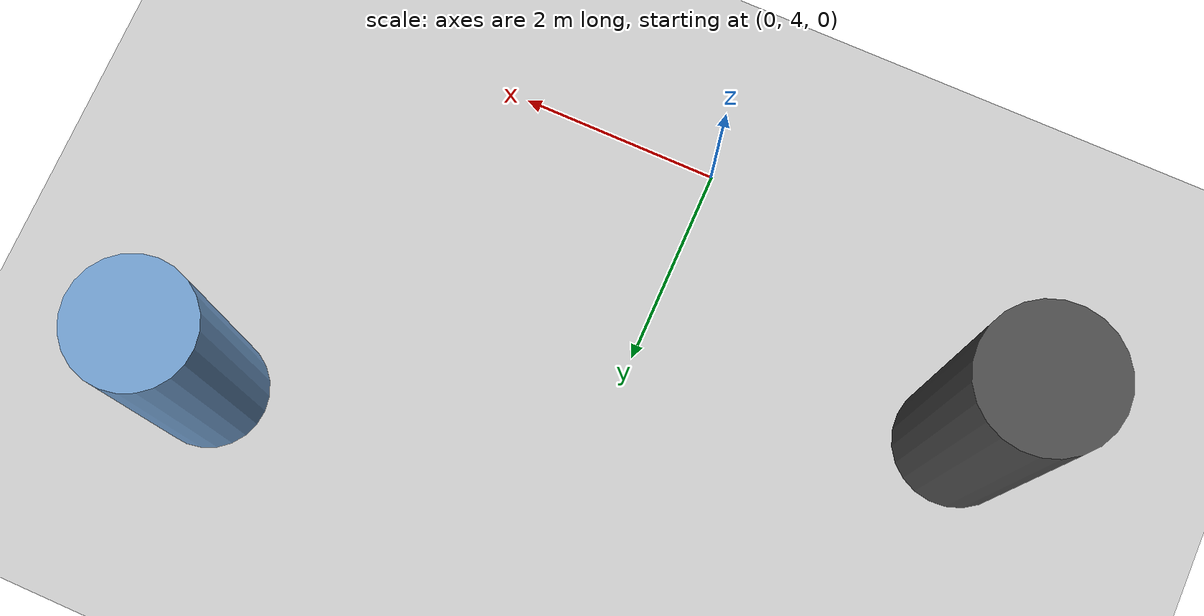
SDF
<?xml version='1.0'?>
<sdf version='1.6'>
  <world name='default'>
    <!-- Sun light -->
    <light name='sun' type='directional'>
      <cast_shadows>1</cast_shadows>
      <pose>0 0 10 0 0 0</pose>
      <diffuse>0.8 0.8 0.8 1</diffuse>
      <specular>0.2 0.2 0.2 1</specular>
      <attenuation>
        <range>1000</range>
        <constant>0.9</constant>
        <linear>0.01</linear>
        <quadratic>0.001</quadratic>
      </attenuation>
      <direction>-0.5 0.1 -0.9</direction>
    </light>

    <!-- Ground plane -->
    <model name='ground_plane'>
      <static>1</static>
      <link name='link'>
        <collision name='collision'>
          <geometry>
            <plane>
              <normal>0 0 1</normal>
              <size>100 100</size>
            </plane>
          </geometry>
          <surface>
            <contact>
              <collide_bitmask>65535</collide_bitmask>
              <ode/>
            </contact>
            <friction>
              <ode>
                <mu>100</mu>
                <mu2>50</mu2>
              </ode>
              <torsional><ode/></torsional>
            </friction>
            <bounce/>
          </surface>
          <max_contacts>10</max_contacts>
        </collision>
        <visual name='visual'>
          <cast_shadows>0</cast_shadows>
          <geometry>
            <plane>
              <normal>0 0 1</normal>
              <size>100 100</size>
            </plane>
          </geometry>
          <material>
            <script>
              <uri>file://media/materials/scripts/gazebo.material</uri>
              <n>Gazebo/Grey</n>
            </script>
          </material>
        </visual>
      </link>
    </model>

    <!-- Environment -->
    <magnetic_field>6e-06 2.3e-05 -4.2e-05</magnetic_field>
    <atmosphere type='adiabatic'/>
    <physics name='default_physics' default='0' type='ode'>
      <gravity>0 0 -9.8</gravity>
      <max_step_size>0.004</max_step_size>
      <real_time_factor>1</real_time_factor>
      <real_time_update_rate>250</real_time_update_rate>
    </physics>
    <scene>
      <ambient>0.4 0.4 0.4 1</ambient>
      <background>0.7 0.7 0.7 1</background>
      <shadows>1</shadows>
    </scene>
    <wind/>
    <spherical_coordinates>
      <surface_model>EARTH_WGS84</surface_model>
      <latitude_deg>0</latitude_deg>
      <longitude_deg>0</longitude_deg>
      <elevation>0</elevation>
      <heading_deg>0</heading_deg>
    </spherical_coordinates>

    <!-- ============ OBSTACLES (2) ============ -->
    <model name='obs_00'>
      <static>1</static>
      <link name='link'>
        <visual name='visual'>
          <geometry>
            <cylinder>
              <radius>0.6270</radius>
              <length>3.6787</length>
            </cylinder>
          </geometry>
          <material>
            <script>
              <n>Gazebo/DarkGrey</n>
              <uri>file://media/materials/scripts/gazebo.material</uri>
            </script>
            <ambient>0.3 0.3 0.3 1</ambient>
          </material>
        </visual>
        <collision name='collision'>
          <geometry>
            <cylinder>
              <radius>0.6270</radius>
              <length>3.6787</length>
            </cylinder>
          </geometry>
          <max_contacts>10</max_contacts>
          <surface>
            <contact><ode/></contact>
            <bounce/>
            <friction>
              <ode><mu>1</mu><mu2>1</mu2></ode>
              <torsional><ode/></torsional>
            </friction>
          </surface>
        </collision>
      </link>
      <pose>-3.2068 5.5120 1.8394 0 0 1.5142</pose>
    </model>

    <model name='obs_01'>
      <static>1</static>
      <link name='link'>
        <visual name='visual'>
          <geometry>
            <cylinder>
              <radius>0.5754</radius>
              <length>3.2101</length>
            </cylinder>
          </geometry>
          <material>
            <script>
              <n>Gazebo/Blue</n>
              <uri>file://media/materials/scripts/gazebo.material</uri>
            </script>
            <ambient>0.447 0.624 0.812 1</ambient>
          </material>
        </visual>
        <collision name='collision'>
          <geometry>
            <cylinder>
              <radius>0.5754</radius>
              <length>3.2101</length>
            </cylinder>
          </geometry>
          <max_contacts>10</max_contacts>
          <surface>
            <contact><ode/></contact>
            <bounce/>
            <friction>
              <ode><mu>1</mu><mu2>1</mu2></ode>
              <torsional><ode/></torsional>
            </friction>
          </surface>
        </collision>
      </link>
      <pose>3.6319 7.9305 1.6051 0 0 2.1266</pose>
    </model>

    <!-- GUI camera -->
    <gui fullscreen='0'>
      <camera name='user_camera'>
        <pose>-15 0 18 0 0.85 0.15</pose>
        <view_controller>orbit</view_controller>
        <projection_type>perspective</projection_type>
      </camera>
    </gui>
  </world>
</sdf>
